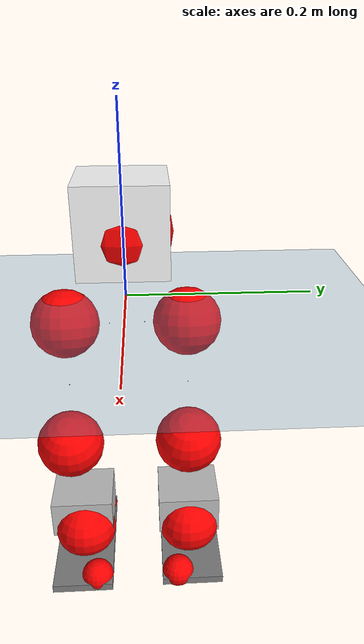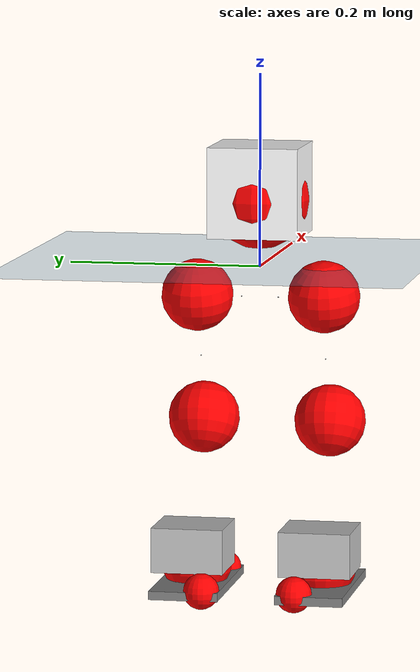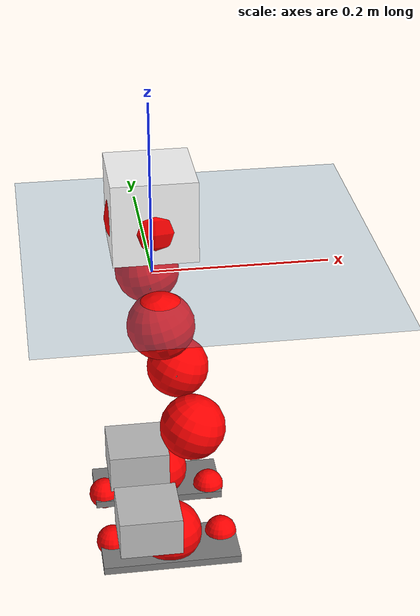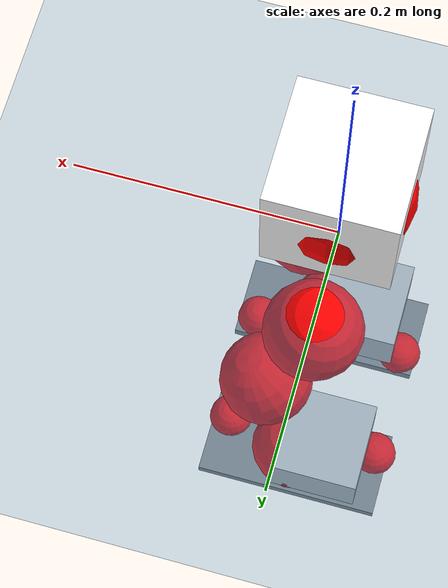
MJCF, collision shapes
<mujoco model="pi_12dof_release_v1">
  <compiler angle="radian" assetdir="assets" balanceinertia="true" inertiafromgeom="false"/>

  <option timestep="0.005" density="1.2" viscosity="2e-05"/>

  <size nkey="1"/>

  <visual>
    <quality shadowsize="8192"/>
    <map shadowclip="0.5"/>
  </visual>

  <default>
    <default class="/">
      <joint armature="0.01" damping="0.01" frictionloss="0.01"/>
      <geom contype="0" conaffinity="0" group="1" solref="-1000 -80"/>
      <site size="0.01 0.005 0.005" group="5"/>
      <general forcelimited="true" biastype="affine" gainprm="20" biasprm="0 -20 -0.5"/>
      <default class="foot">
        <geom size="0.0845 0.036 0.005" type="box" condim="6" group="4" priority="1" friction="0.9 0.2 0.2" solimp="0.015 1 0.005"/>
      </default>
      <default class="reward_collision_sphere">
        <geom group="5" rgba="1 0 0 1"/>
      </default>
    </default>
  </default>

  <asset>
    <texture type="skybox" colorspace="auto" name="//unnamed_texture_0" builtin="gradient" rgb1="0.95 0.95 0.95" rgb2="0.95 0.95 0.95" width="100" height="600"/>
    <texture type="2d" colorspace="auto" name="texplane" builtin="checker" rgb1="0.345 0.575 0.748" rgb2="0.345 0.575 0.748" markrgb="1 1 1" width="512" height="512"/>
    <material name="MatPlane" class="/" texture="texplane" texuniform="true" texrepeat="2 2" specular="0.9"/>
    <mesh name="baselink_1" class="/" file="baselink_1.STL"/>
    <mesh name="r_hip_pitch_link" class="/" file="r_hip_pitch_link.STL"/>
    <mesh name="r_hip_roll_link" class="/" file="r_hip_roll_link.STL"/>
    <mesh name="r_thigh_link" class="/" file="r_thigh_link.STL"/>
    <mesh name="r_calf_link" class="/" file="r_calf_link.STL"/>
    <mesh name="r_ankle_pitch_link" class="/" file="r_ankle_pitch_link.STL"/>
    <mesh name="r_ankle_roll_link" class="/" file="r_ankle_roll_link.STL"/>
    <mesh name="l_hip_pitch_link" class="/" file="l_hip_pitch_link.STL"/>
    <mesh name="l_hip_roll_link" class="/" file="l_hip_roll_link.STL"/>
    <mesh name="l_thigh_link" class="/" file="l_thigh_link.STL"/>
    <mesh name="l_calf_link" class="/" file="l_calf_link.STL"/>
    <mesh name="l_ankle_pitch_link" class="/" file="l_ankle_pitch_link.STL"/>
    <mesh name="l_ankle_roll_link" class="/" file="l_ankle_roll_link.STL"/>
  </asset>

  <worldbody>
    <geom name="floor" class="/" size="100 100 0.125" type="plane" group="0" material="MatPlane"/>
    <light name="toplight_shadow" class="/" pos="0 0 5" dir="0.0990148 0.0990148 -0.990148" type="directional" ambient="0.04 0.04 0.04" diffuse="0.55 0.55 0.55" specular="0.12 0.12 0.12"/>
    <light name="toplight_fill" class="/" pos="0 0 5" dir="0.0990148 0.0990148 -0.990148" type="directional" castshadow="false" ambient="0.04 0.04 0.04" diffuse="0.3 0.3 0.3" specular="0.08 0.08 0.08"/>
    <body name="trunk" pos="4.75922e-05 0.000129486 0.000635207" quat="1 0.000126927 -2.49026e-07 3.67202e-05">
      <inertial pos="0.00245152 -0.00134681 0.0391155" quat="0.696452 0.0103787 0.0104438 0.717452" mass="1.76876" diaginertia="0.00815382 0.00425493 0.00399169"/>
      <joint name="//unnamed_joint_0" type="free"/>
      <geom name="//unnamed_geom_1" class="/" type="mesh" density="0" rgba="1 1 1 1" mesh="baselink_1"/>
      <geom name="//unnamed_geom_2" class="/" size="0.0469411 0.0469411 0.0469411" pos="0 0 0.0792897" type="box" rgba="1 1 1 1"/>
      <geom name="//unnamed_geom_3" class="reward_collision_sphere" size="0.0516352" pos="0 0 0.0693784"/>
      <site name="imu" class="/" pos="-0.00614296 -0.00223891 0.00184144" size="0.00938823"/>
      <camera name="track" class="/" pos="0 -1.71989 0" quat="0.707107 0.707107 0 0" mode="trackcom"/>
      <camera name="ego_camera" class="/" pos="0.0724053 0 0.178402" quat="-0.5 -0.5 0.5 0.5"/>
      <body name="r_hip_pitch_link" pos="0.000545911 -0.0194876 -0.032469" quat="0.992223 -0.000142679 -0.124469 -0.000253965">
        <inertial pos="0.00157986 -0.0472234 0.000286646" quat="-0.0153581 0.705682 -0.0257399 0.707894" mass="0.305076" diaginertia="9.0518e-05 4.62052e-05 7.94806e-05"/>
        <joint name="r_hip_pitch_joint" class="/" pos="0 0 0" axis="-0.000894053 -0.999998 0.00181379" stiffness="0.0014852" range="-1.75088 1.23385" armature="0.00968876" damping="0.00219036" frictionloss="0.00958081"/>
        <geom name="//unnamed_geom_4" class="/" type="mesh" density="0" rgba="0.75294 0.75294 0.75294 1" mesh="r_hip_pitch_link"/>
        <geom name="//unnamed_geom_5" class="/" size="0.000469411 0.000469411 0.000469411" type="box" rgba="0.75294 0.75294 0.75294 1"/>
        <body name="r_hip_roll_link" pos="0.00109347 -0.0478475 0.00103289" quat="1 3.07231e-05 -0.000114285 -1.29438e-05">
          <inertial pos="-0.00212154 -0.000124313 -0.0606587" quat="0.706033 -0.0792002 -0.0825037 0.698883" mass="0.317165" diaginertia="0.000277429 0.00013056 0.000121741"/>
          <joint name="r_hip_roll_joint" class="/" pos="0 0 0" axis="-0.999982 -0.00186069 0.0056724" range="-0.130082 0.489686" armature="0.00976482" damping="0.0079698" frictionloss="0.00916943"/>
          <geom name="//unnamed_geom_6" class="/" type="mesh" density="0" rgba="0.75294 0.75294 0.75294 1" mesh="r_hip_roll_link"/>
          <geom name="//unnamed_geom_7" class="/" size="0.000469411 0.000469411 0.000469411" type="box" rgba="0.75294 0.75294 0.75294 1"/>
          <geom name="//unnamed_geom_8" class="reward_collision_sphere" size="0.0375529"/>
          <body name="r_thigh_link" pos="-0.000649715 0.000807197 -0.0692441" quat="1 3.17124e-05 2.41488e-05 -6.06358e-05">
            <inertial pos="7.34193e-05 0.0010409 -0.0473161" quat="0.737281 0.675586 -0.000167792 0.000787625" mass="0.0947418" diaginertia="0.000106106 4.45318e-05 5.57757e-05"/>
            <joint name="r_thigh_joint" class="/" pos="0 0 0" axis="-0.00134648 0.00119956 -0.999998" range="-0.311184 0.592064" armature="0.00952359" damping="0.00435049" frictionloss="0.00962808"/>
            <geom name="//unnamed_geom_9" class="/" type="mesh" density="0" rgba="0.75294 0.75294 0.75294 1" mesh="r_thigh_link"/>
            <geom name="//unnamed_geom_10" class="/" size="0.000469411 0.000469411 0.000469411" type="box" rgba="0.75294 0.75294 0.75294 1"/>
            <body name="r_calf_link" pos="9.07019e-05 -0.00217105 -0.0693487" quat="0.947669 -0.000200104 0.319255 0.000151438">
              <inertial pos="-0.000120536 -0.000620191 -0.0694625" quat="0.999984 -0.00289462 0.000588936 0.00476749" mass="0.664367" diaginertia="0.00295122 0.0016092 0.000165396"/>
              <joint name="r_calf_joint" class="/" pos="0 0 0" axis="-0.00382164 -0.99999 -0.00214342" range="-1.65002 0.628633" armature="0.00973879" damping="0.00412947" frictionloss="0.00982081"/>
              <geom name="//unnamed_geom_11" class="/" type="mesh" density="0" rgba="0.75294 0.75294 0.75294 1" mesh="r_calf_link"/>
              <geom name="//unnamed_geom_12" class="/" size="0.000469411 0.000469411 0.000469411" type="box" rgba="0.75294 0.75294 0.75294 1"/>
              <geom name="//unnamed_geom_13" class="reward_collision_sphere" size="0.0375529"/>
              <body name="r_ankle_pitch_link" pos="0.000667474 0.00226627 -0.138168" quat="0.980066 -9.0591e-06 -0.198674 2.8332e-05">
                <inertial pos="0.00468559 0.00357797 -0.000364815" quat="0.00116473 0.707443 -0.0023033 0.706765" mass="0.144677" diaginertia="0.000259348 0.000103653 0.000113785"/>
                <joint name="r_ankle_pitch_joint" class="/" pos="0 0 0" axis="0.00151233 -0.999998 -0.00102628" range="-1.30209 0.51042" armature="0.00917919" damping="0.0020777" frictionloss="0.00937972"/>
                <geom name="//unnamed_geom_14" class="/" type="mesh" density="0" rgba="0.75294 0.75294 0.75294 1" mesh="r_ankle_pitch_link"/>
                <geom name="//unnamed_geom_15" class="/" size="0.0366141 0.0375529 0.0234706" type="box" rgba="0.75294 0.75294 0.75294 1"/>
                <body name="r_ankle_roll_link" pos="0.0739967 0.00255065 -0.000402967" quat="1 3.95281e-05 -5.76295e-05 0.000145233">
                  <inertial pos="-0.0232174 0.000268297 -0.0138441" quat="0.563516 0.428287 0.433825 0.557509" mass="0.426296" diaginertia="0.000935223 0.000485576 0.000269818"/>
                  <joint name="r_ankle_roll_joint" class="/" pos="0 0 0" axis="-1 -1.52629e-05 1.47266e-05" range="-0.137496 0.136136" armature="0.00906917" damping="0.000910058" frictionloss="0.00948811"/>
                  <geom name="//unnamed_geom_16" class="/" type="mesh" density="0" rgba="0.75294 0.75294 0.75294 1" mesh="r_ankle_roll_link"/>
                  <geom name="//unnamed_geom_17" class="/" type="mesh" rgba="0.75294 0.75294 0.75294 1" mesh="r_ankle_roll_link"/>
                  <geom name="right_foot" class="foot" size="0.0810421 0.0353659 0.00461966" pos="-0.0492356 0 -0.0436093"/>
                  <geom name="//unnamed_geom_19" class="reward_collision_sphere" size="0.0375529" pos="-0.0482702 0 -0.0198224"/>
                  <geom name="//unnamed_geom_20" class="reward_collision_sphere" size="0.0187765" pos="0.0144811 0.0171989 -0.0396448"/>
                  <geom name="//unnamed_geom_21" class="reward_collision_sphere" size="0.0187765" pos="-0.115848 0.0171989 -0.0396448"/>
                  <site name="right_foot" class="foot" pos="-0.0492356 0 -0.0436093" size="0.00938823"/>
                </body>
              </body>
            </body>
          </body>
        </body>
      </body>
      <body name="l_hip_pitch_link" pos="-0.00082957 0.0190342 -0.0321953" quat="0.992194 1.8856e-05 -0.124704 1.2394e-05">
        <inertial pos="-0.000106613 0.0466265 -0.000439085" quat="-0.0410237 0.704287 0.0328059 0.70797" mass="0.320215" diaginertia="0.000107965 4.99835e-05 9.5705e-05"/>
        <joint name="l_hip_pitch_joint" class="/" pos="0 0 0" axis="-0.000930393 0.999988 0.00473669" stiffness="0.00057479" range="-1.25517 1.7623" armature="0.009816" damping="0.0031223" frictionloss="0.00915067"/>
        <geom name="//unnamed_geom_22" class="/" type="mesh" density="0" rgba="0.75294 0.75294 0.75294 1" mesh="l_hip_pitch_link"/>
        <geom name="//unnamed_geom_23" class="/" size="0.000469411 0.000469411 0.000469411" type="box" rgba="0.75294 0.75294 0.75294 1"/>
        <body name="l_hip_roll_link" pos="0.00138203 0.0466631 -6.68229e-05" quat="1 3.40308e-05 3.22461e-07 -1.42013e-06">
          <inertial pos="-0.00155306 -0.000172143 -0.0612387" quat="0.699431 -0.07529 -0.07785 0.706447" mass="0.32167" diaginertia="0.000279358 0.000132112 0.000122818"/>
          <joint name="l_hip_roll_joint" class="/" pos="0 0 0" axis="-0.999976 -0.000900636 0.00681982" stiffness="0.000956805" range="-0.47719 0.0990347" armature="0.00959551" damping="0.0103677" frictionloss="0.00921495"/>
          <geom name="//unnamed_geom_24" class="/" type="mesh" density="0" rgba="0.75294 0.75294 0.75294 1" mesh="l_hip_roll_link"/>
          <geom name="//unnamed_geom_25" class="/" size="0.000469411 0.000469411 0.000469411" type="box" rgba="0.75294 0.75294 0.75294 1"/>
          <geom name="//unnamed_geom_26" class="reward_collision_sphere" size="0.0375529"/>
          <body name="l_thigh_link" pos="0.00107923 -0.000380681 -0.0684784" quat="1 -0.000158196 0.000303562 -6.72893e-05">
            <inertial pos="0.000328897 -0.00165835 -0.0470285" quat="0.672368 0.740189 -0.00412741 -0.00488359" mass="0.0934749" diaginertia="0.000104755 4.48032e-05 5.46297e-05"/>
            <joint name="l_thigh_joint" class="/" pos="0 0 0" axis="-0.00115353 -0.00346031 -0.999993" range="-0.583319 0.279472" armature="0.0088912" damping="0.000334623" frictionloss="0.00899722"/>
            <geom name="//unnamed_geom_27" class="/" type="mesh" density="0" rgba="0.75294 0.75294 0.75294 1" mesh="l_thigh_link"/>
            <geom name="//unnamed_geom_28" class="/" size="0.000469411 0.000469411 0.000469411" type="box" rgba="0.75294 0.75294 0.75294 1"/>
            <body name="l_calf_link" pos="-0.00105216 -0.000303218 -0.0694828" quat="0.947675 4.32975e-05 0.319236 8.47029e-06">
              <inertial pos="-0.00046074 0.00267308 -0.0697012" quat="0.999984 0.00308871 -0.000407943 0.00475791" mass="0.681064" diaginertia="0.00299398 0.00166601 0.00016672"/>
              <joint name="l_calf_joint" class="/" pos="0 0 0" axis="-0.000120591 1 -0.000310637" stiffness="0.00381744" range="-0.659595 1.62228" armature="0.00928217" damping="0.00791712" frictionloss="0.00918946"/>
              <geom name="//unnamed_geom_29" class="/" type="mesh" density="0" rgba="0.75294 0.75294 0.75294 1" mesh="l_calf_link"/>
              <geom name="//unnamed_geom_30" class="/" size="0.000469411 0.000469411 0.000469411" type="box" rgba="0.75294 0.75294 0.75294 1"/>
              <geom name="//unnamed_geom_31" class="reward_collision_sphere" size="0.0375529"/>
              <body name="l_ankle_pitch_link" pos="0.0013849 0.00189514 -0.138122" quat="0.98008 6.98755e-05 -0.198605 0.000130563">
                <inertial pos="0.00423617 -0.000987555 0.000329643" quat="-0.002178 0.707162 0.00217321 0.707044" mass="0.141092" diaginertia="0.000252888 0.000102073 0.000113096"/>
                <joint name="l_ankle_pitch_joint" class="/" pos="0 0 0" axis="0.000453044 0.999998 0.00183611" range="-0.506405 1.3049" armature="0.00944743" damping="0.00425442" frictionloss="0.0101216"/>
                <geom name="//unnamed_geom_32" class="/" type="mesh" density="0" rgba="0.75294 0.75294 0.75294 1" mesh="l_ankle_pitch_link"/>
                <geom name="//unnamed_geom_33" class="/" size="0.0366141 0.0375529 0.0234706" type="box" rgba="0.75294 0.75294 0.75294 1"/>
                <body name="l_ankle_roll_link" pos="0.0724446 0.00051429 -6.33946e-05" quat="1 -0.000122717 -0.000314338 0.000372229">
                  <inertial pos="-0.0227752 -0.000461513 -0.0146425" quat="0.560148 0.430559 0.433822 0.559153" mass="0.430465" diaginertia="0.000959195 0.000484486 0.000269584"/>
                  <joint name="l_ankle_roll_joint" class="/" pos="0 0 0" axis="-1 1.00329e-06 0.000108843" range="-0.150066 0.151249" armature="0.00949713" damping="0.00895851" frictionloss="0.00891956"/>
                  <geom name="//unnamed_geom_34" class="/" type="mesh" density="0" rgba="0.75294 0.75294 0.75294 1" mesh="l_ankle_roll_link"/>
                  <geom name="//unnamed_geom_35" class="/" type="mesh" rgba="0.75294 0.75294 0.75294 1" mesh="l_ankle_roll_link"/>
                  <geom name="left_foot" class="foot" size="0.0784028 0.03606 0.00449006" pos="-0.0492356 0 -0.0436093"/>
                  <geom name="//unnamed_geom_37" class="reward_collision_sphere" size="0.0375529" pos="-0.0482702 0 -0.0198224"/>
                  <geom name="//unnamed_geom_38" class="reward_collision_sphere" size="0.0187765" pos="0.0144811 -0.0171989 -0.0396448"/>
                  <geom name="//unnamed_geom_39" class="reward_collision_sphere" size="0.0187765" pos="-0.115848 -0.0171989 -0.0396448"/>
                  <site name="left_foot" class="foot" pos="-0.0492356 0 -0.0436093" size="0.00938823"/>
                </body>
              </body>
            </body>
          </body>
        </body>
      </body>
    </body>
  </worldbody>

  <contact>
    <pair class="/" geom1="floor" geom2="right_foot" name="//unnamed_contact_1"/>
    <pair class="/" geom1="floor" geom2="left_foot" name="//unnamed_contact_0"/>
  </contact>

  <actuator>
    <general name="r_hip_pitch_joint" class="/" joint="r_hip_pitch_joint" forcerange="-19.3895 19.3895" gainprm="18.6711" biasprm="0 -18.6711 -0.480913"/>
    <general name="r_hip_roll_joint" class="/" joint="r_hip_roll_joint" forcerange="-19.7017 19.7017" gainprm="18.6711" biasprm="0 -18.6711 -0.480913"/>
    <general name="r_thigh_joint" class="/" joint="r_thigh_joint" forcerange="-19.4847 19.4847" gainprm="18.6711" biasprm="0 -18.6711 -0.480913"/>
    <general name="r_calf_joint" class="/" joint="r_calf_joint" forcerange="-19.8052 19.8052" gainprm="18.6711" biasprm="0 -18.6711 -0.480913"/>
    <general name="r_ankle_pitch_joint" class="/" joint="r_ankle_pitch_joint" forcerange="-19.6944 19.6944" gainprm="18.6711" biasprm="0 -18.6711 -0.480913"/>
    <general name="r_ankle_roll_joint" class="/" joint="r_ankle_roll_joint" forcerange="-19.7453 19.7453" gainprm="18.6711" biasprm="0 -18.6711 -0.480913"/>
    <general name="l_hip_pitch_joint" class="/" joint="l_hip_pitch_joint" forcerange="-19.4024 19.4024" gainprm="18.6711" biasprm="0 -18.6711 -0.480913"/>
    <general name="l_hip_roll_joint" class="/" joint="l_hip_roll_joint" forcerange="-20.4118 20.4118" gainprm="18.6711" biasprm="0 -18.6711 -0.480913"/>
    <general name="l_thigh_joint" class="/" joint="l_thigh_joint" forcerange="-19.5475 19.5475" gainprm="18.6711" biasprm="0 -18.6711 -0.480913"/>
    <general name="l_calf_joint" class="/" joint="l_calf_joint" forcerange="-20.3423 20.3423" gainprm="18.6711" biasprm="0 -18.6711 -0.480913"/>
    <general name="l_ankle_pitch_joint" class="/" joint="l_ankle_pitch_joint" forcerange="-19.0762 19.0762" gainprm="18.6711" biasprm="0 -18.6711 -0.480913"/>
    <general name="l_ankle_roll_joint" class="/" joint="l_ankle_roll_joint" forcerange="-19.4731 19.4731" gainprm="18.6711" biasprm="0 -18.6711 -0.480913"/>
  </actuator>

  <sensor>
    <gyro site="imu" name="imu_angular_velocity"/>
    <velocimeter site="imu" name="imu_linear_velocity"/>
    <framelinvel objtype="site" objname="left_foot" name="left_foot_global_linear_velocity"/>
    <framelinvel objtype="site" objname="right_foot" name="right_foot_global_linear_velocity"/>
  </sensor>

  <keyframe>
    <key name="home" qpos="0 0 0.291 1 0 0 0 0.4 0 0 -0.8 0.4 0 -0.4 0 0 0.8 -0.4 0"/>
  </keyframe>
</mujoco>
